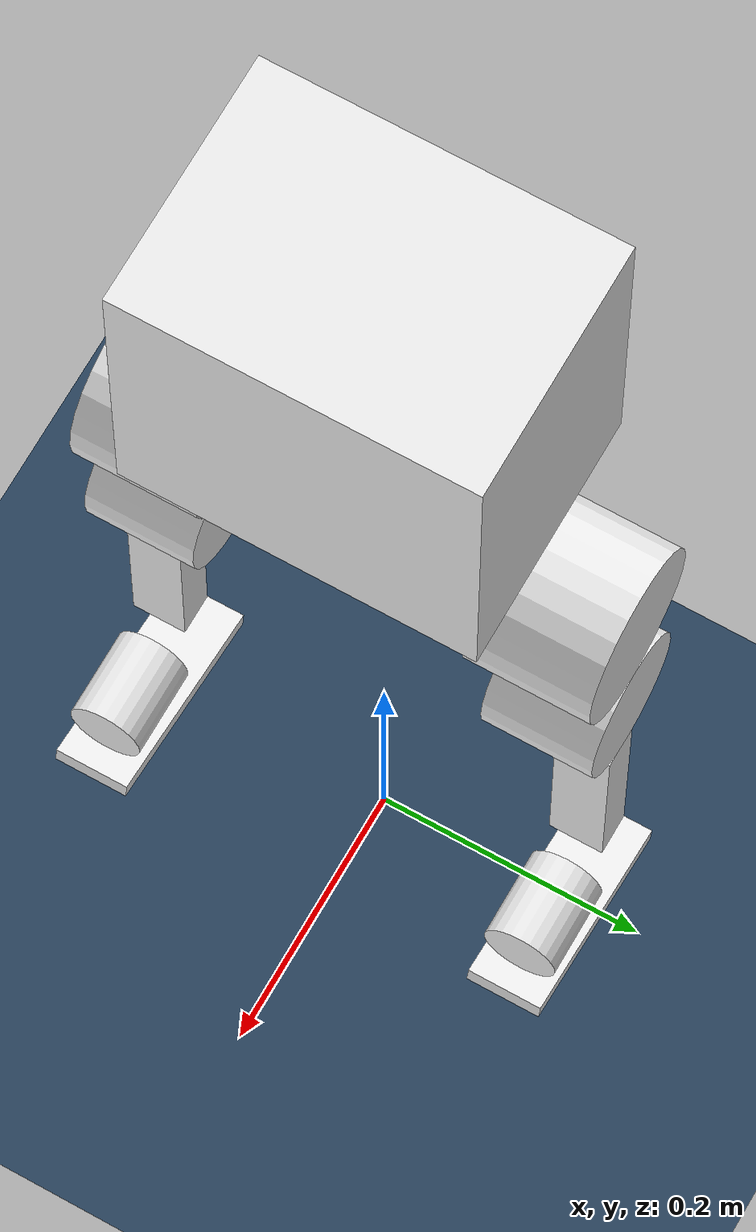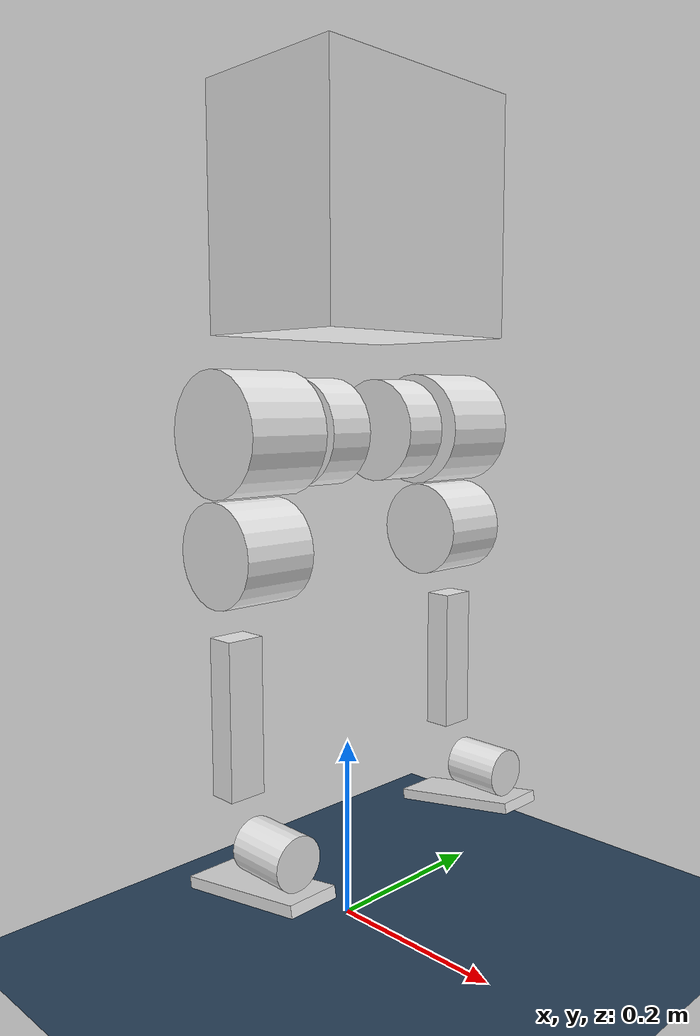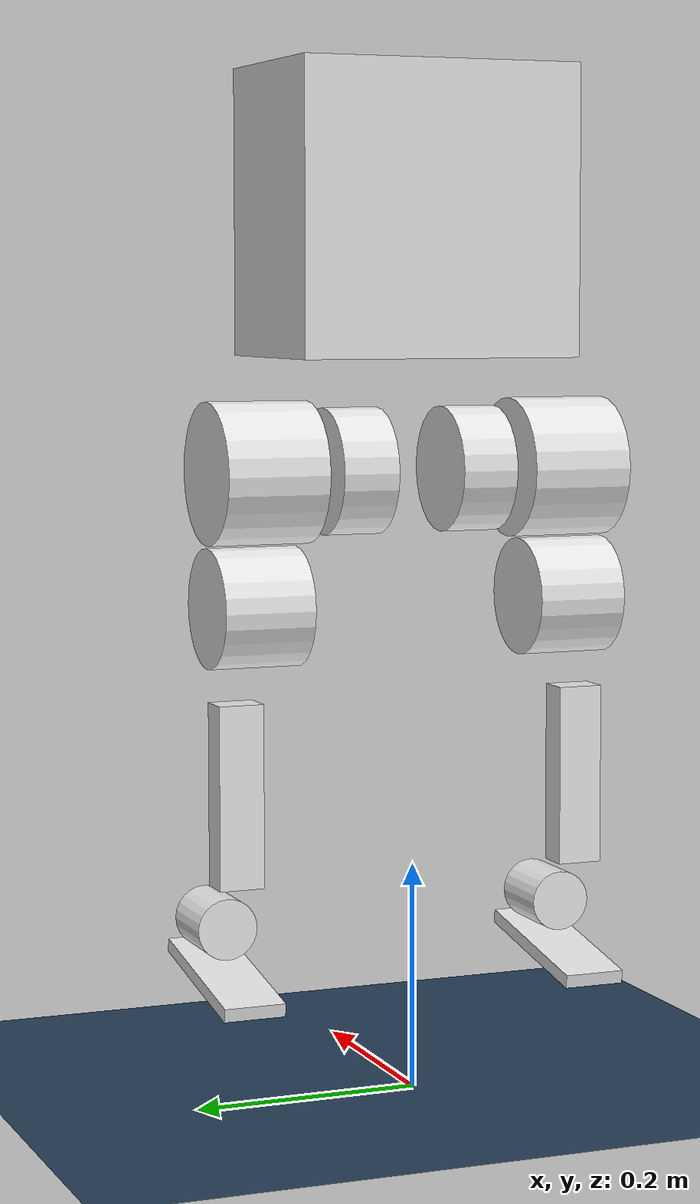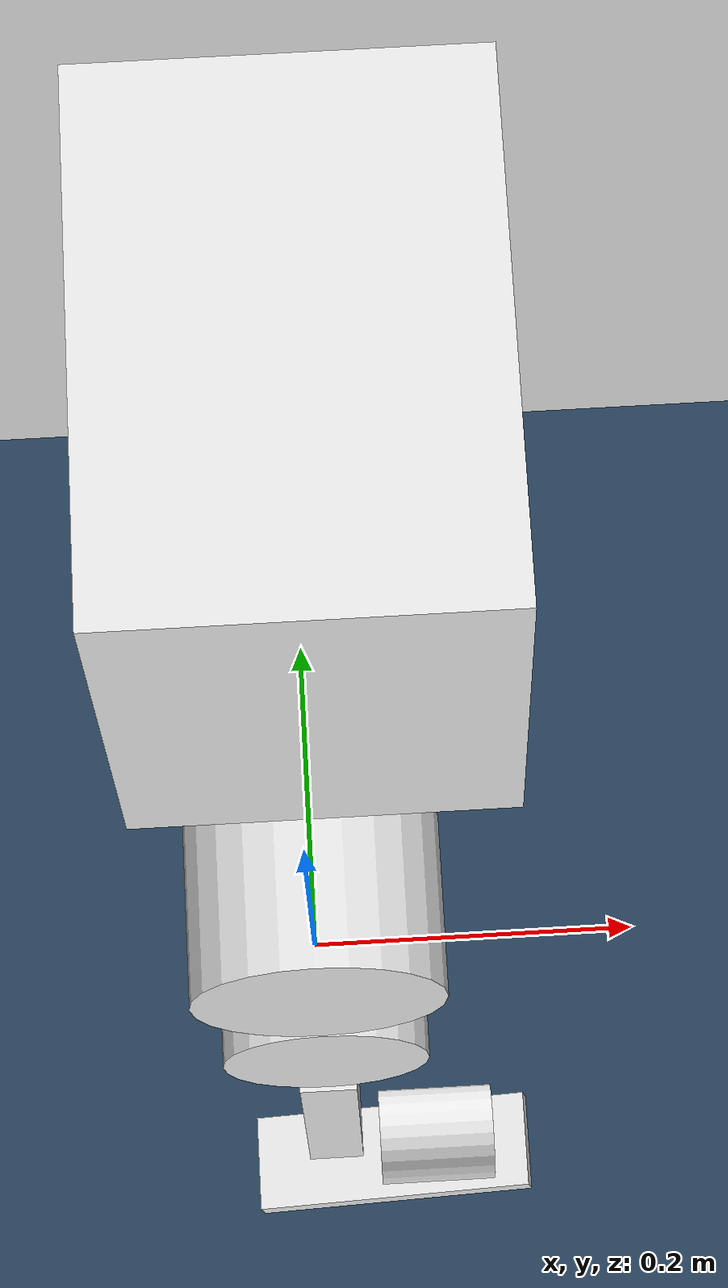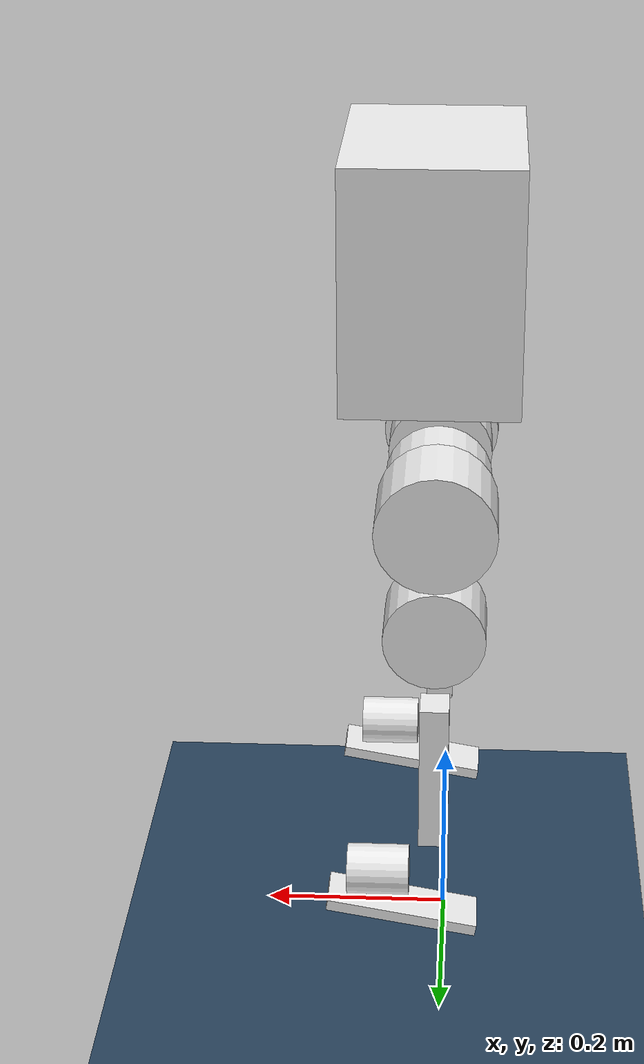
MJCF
<mujoco model="berkeley_humanoid_scene">
    <option timestep="0.002" gravity="0 0 -9.81" iterations="100" solver="Newton" tolerance="1e-10"/>

    <visual>
        <rgba fog="0.1 0.2 0.3 1"/>
        <global offwidth="1920" offheight="1080" elevation="-20" azimuth="120"/>
    </visual>

    <asset>
        <texture type="skybox" builtin="gradient" rgb1="0.4 0.6 0.8" rgb2="0 0 0" width="512" height="512"/>
        <texture name="grid" type="2d" builtin="checker" width="512" height="512" rgb1="0.1 0.2 0.3" rgb2="0.2 0.3 0.4"/>
        <material name="grid_mat" texture="grid" texrepeat="10 10" texuniform="true" reflectance="0.2"/>
    </asset>

    <default>
        <joint armature="0.01" damping="0.5" limited="true"/>
        <geom friction="2.0 0.1 0.01" solref="0.02 1" solimp="0.5 0.99 0.001"/>
    </default>

    <worldbody>
        <light name="sun" directional="true" pos="0 0 10" dir="0 0 -1" castshadow="true" diffuse="0.8 0.8 0.8" specular="0.2 0.2 0.2"/>
        <light name="fill" directional="true" pos="10 10 5" dir="-1 -1 -0.5" castshadow="false" diffuse="0.2 0.2 0.2"/>

        <geom name="floor" type="plane" size="10 10 0.1" material="grid_mat" condim="4"/>
    </worldbody>

    <contact>
        <exclude body1="torso" body2="ll_hr"/>
        <exclude body1="ll_hr" body2="ll_haa"/>
        <exclude body1="ll_haa" body2="ll_hfe"/>
        <exclude body1="ll_hfe" body2="ll_kfe"/>
        <exclude body1="ll_kfe" body2="ll_ffe"/>
        <exclude body1="ll_ffe" body2="ll_faa"/>

        <exclude body1="torso" body2="lr_hr"/>
        <exclude body1="lr_hr" body2="lr_haa"/>
        <exclude body1="lr_haa" body2="lr_hfe"/>
        <exclude body1="lr_hfe" body2="lr_kfe"/>
        <exclude body1="lr_kfe" body2="lr_ffe"/>
        <exclude body1="lr_ffe" body2="lr_faa"/>
    </contact>

    <include file="berkeley_humanoid_description/urdf/robot.xml"/>
</mujoco>

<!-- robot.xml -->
<mujoco model="berkeley_humanoid">
  <compiler angle="radian"/>

  <worldbody>
    <body name="torso" pos="0 0 0.65">

      <freejoint name="root"/>

      <geom size="0.09 0.125 0.125" pos="0.02 0 0.12" type="box" rgba="0.917647 0.917647 0.917647 1"/>

      <body name="ll_hr" pos="0 0.07 0" quat="0.92388 0 0.382683 0">
        <inertial pos="-0.00717501 0.000638 -0.0603296" quat="0.997785 0.00699266 0.066053 0.00374607" mass="0.797" diaginertia="0.00165598 0.00124847 0.000774206"/>
        <joint name="LL_HR" pos="0 0 0" axis="0 0 1" range="-0.610865 0.610865" actuatorfrcrange="-20 20"/>
        <body name="ll_haa" pos="0.0158 0 -0.065" quat="0.707107 0 -0.707107 0">
          <inertial pos="0.000606614 -0.009735 -0.0611092" quat="0.702991 -0.06137 0.0554512 0.706373" mass="0.897" diaginertia="0.0018904 0.0014613 0.000923049"/>
          <joint name="LL_HAA" pos="0 0 0" axis="0 0 1" range="-0.610865 0.610865" actuatorfrcrange="-20 20"/>
          <geom size="0.055 0.025" pos="6.77985e-05 -0.015 -0.0649318" quat="0.653281 0.653281 0.270598 -0.270598" type="cylinder" rgba="0.917647 0.917647 0.917647 1"/>
          <body name="ll_hfe" pos="0 0.0158 -0.065" quat="0.653281 -0.653281 -0.270598 -0.270598">
            <inertial pos="-0.0596998 -0.000999287 0.045473" quat="-0.00572221 0.744789 -0.0182535 0.667026" mass="2.689" diaginertia="0.0191406 0.0181903 0.00583016"/>
            <joint name="LL_HFE" pos="0 0 0" axis="0 0 1" range="-1.74533 0.523599" actuatorfrcrange="-30 30"/>
            <geom size="0.0615 0.045" pos="9.61687e-05 -2.87143e-07 0.0542" quat="0 -0.707107 -0.707107 0" type="cylinder" rgba="0.917647 0.917647 0.917647 1"/>
            <geom size="0.052 0.04" pos="-0.114904 -2.87143e-07 0.0592" quat="0 -0.707107 -0.707107 0" type="cylinder" rgba="0.917647 0.917647 0.917647 1"/>
            <body name="ll_kfe" pos="-0.22 0 0.0742" quat="1 0 0 0">
              <inertial pos="-0.0856948 -0.00928029 -0.002232" quat="-0.11773 0.702823 -0.0559586 0.69932" mass="0.35" diaginertia="0.00161117 0.00159463 9.70556e-05"/>
              <joint name="LL_KFE" pos="0 0 0" axis="0 0 1" range="0 2.0944" actuatorfrcrange="-30 30"/>
              <geom size="0.015 0.02 0.08" pos="-0.0569038 -0.00117229 0" quat="0.5 0.5 0.5 0.5" type="box" rgba="0.917647 0.917647 0.917647 1"/>
              <body name="ll_ffe" pos="-0.18 0 0">
                <inertial pos="-0.00107817 0.0237707 6.8e-05" quat="0.553259 0.458091 -0.532546 0.447717" mass="0.0993228" diaginertia="8.20308e-05 7.84322e-05 9.34827e-06"/>
                <joint name="LL_FFE" pos="0 0 0" axis="0 0 1" range="-0.523599 0.698132" actuatorfrcrange="-20 20"/>
                <body name="ll_faa" pos="0 0.0175 0" quat="0.5 -0.5 -0.5 -0.5">
                  <inertial pos="-2.9e-05 -0.0163978 0.0153387" quat="0.985258 -0.171058 -0.00255986 0.000455342" mass="0.507" diaginertia="0.00109422 0.000978734 0.000375399"/>
                  <joint name="LL_FAA" pos="0 0 0" axis="0 0 1" range="-0.523599 0.523599" actuatorfrcrange="-5 5"/>
                  <geom size="0.08 0.0275 0.006" pos="0 -0.0429038 0.0133277" quat="0.45452 -0.541675 -0.541675 -0.45452" type="box" rgba="0.917647 0.917647 0.917647 1"/>
                  <geom size="0.027 0.0325" pos="0 9.61687e-05 0.0388277" quat="0 -0.707107 -0.707107 0" type="cylinder" rgba="0.917647 0.917647 0.917647 1"/>
                </body>
              </body>
            </body>
          </body>
        </body>
      </body>

      <body name="lr_hr" pos="0 -0.07 0" quat="0.92388 0 0.382683 0">
        <inertial pos="-0.00717501 -0.000638 -0.0603296" quat="0.997804 -0.00433689 0.066057 0.0019766" mass="0.797" diaginertia="0.00165632 0.00124845 0.000774613"/>
        <joint name="LR_HR" pos="0 0 0" axis="0 0 1" range="-0.610865 0.610865" actuatorfrcrange="-20 20"/>
        <body name="lr_haa" pos="0.0158 0 -0.065" quat="0.707107 0 -0.707107 0">
          <inertial pos="0.000606614 0.009735 -0.0611092" quat="0.704792 0.0582267 -0.0597566 0.704491" mass="0.897" diaginertia="0.00189204 0.00146613 0.000918492"/>
          <joint name="LR_HAA" pos="0 0 0" axis="0 0 1" range="-0.610865 0.610865" actuatorfrcrange="-20 20"/>
          <geom size="0.055 0.025" pos="6.77985e-05 0.015 -0.0649318" quat="0.653281 0.653281 0.270598 -0.270598" type="cylinder" rgba="0.917647 0.917647 0.917647 1"/>
          <body name="lr_hfe" pos="0 -0.0158 -0.065" quat="0.653281 -0.653281 -0.270598 -0.270598">
            <inertial pos="-0.0596998 -0.000999287 -0.045473" quat="0.018407 0.667006 0.00579507 0.744802" mass="2.689" diaginertia="0.0191386 0.0181883 0.00582996"/>
            <joint name="LR_HFE" pos="0 0 0" axis="0 0 1" range="-1.74533 0.523599" actuatorfrcrange="-30 30"/>
            <geom size="0.0615 0.045" pos="9.61687e-05 -2.87143e-07 -0.0542" quat="0 -0.707107 -0.707107 0" type="cylinder" rgba="0.917647 0.917647 0.917647 1"/>
            <geom size="0.052 0.04" pos="-0.114904 -2.87143e-07 -0.0592" quat="0 -0.707107 -0.707107 0" type="cylinder" rgba="0.917647 0.917647 0.917647 1"/>
            <body name="lr_kfe" pos="-0.22 0 -0.0742" quat="1 0 0 0">
              <inertial pos="-0.0856948 -0.00928029 0.002232" quat="0.055958 0.69932 0.11773 0.702823" mass="0.35" diaginertia="0.00161117 0.00159463 9.70556e-05"/>
              <joint name="LR_KFE" pos="0 0 0" axis="0 0 1" range="0 2.0944" actuatorfrcrange="-30 30"/>
              <geom size="0.015 0.02 0.08" pos="-0.0569038 -0.00117229 0" quat="0.5 0.5 0.5 0.5" type="box" rgba="0.917647 0.917647 0.917647 1"/>
              <body name="lr_ffe" pos="-0.18 0 0" quat="1 0 0 0">
                <inertial pos="-0.00107817 0.0237707 -6.8e-05" quat="0.532548 0.447721 -0.553256 0.45809" mass="0.0993223" diaginertia="8.20306e-05 7.84321e-05 9.34825e-06"/>
                <joint name="LR_FFE" pos="0 0 0" axis="0 0 1" range="-0.523599 0.698132" actuatorfrcrange="-20 20"/>
                <body name="lr_faa" pos="0 0.0175 0" quat="0.5 -0.5 -0.5 -0.5">
                  <inertial pos="2.9e-05 -0.0163368 0.0153387" quat="0.985231 -0.171209 0.00251902 -0.000808066" mass="0.507" diaginertia="0.00109488 0.000978788 0.000376011"/>
                  <joint name="LR_FAA" pos="0 0 0" axis="0 0 1" range="-0.523599 0.523599" actuatorfrcrange="-5 5"/>
                  <geom size="0.08 0.0275 0.006" pos="0 -0.0429038 0.0133277" quat="-0.45452 0.541675 0.541675 0.45452" type="box" rgba="0.917647 0.917647 0.917647 1"/>
                  <geom size="0.027 0.0325" pos="0 9.61687e-05 0.0388277" quat="0 0.707107 0.707107 0" type="cylinder" rgba="0.917647 0.917647 0.917647 1"/>
                </body>
              </body>
            </body>
          </body>
        </body>
      </body>
    </body>
    </worldbody>
</mujoco>
